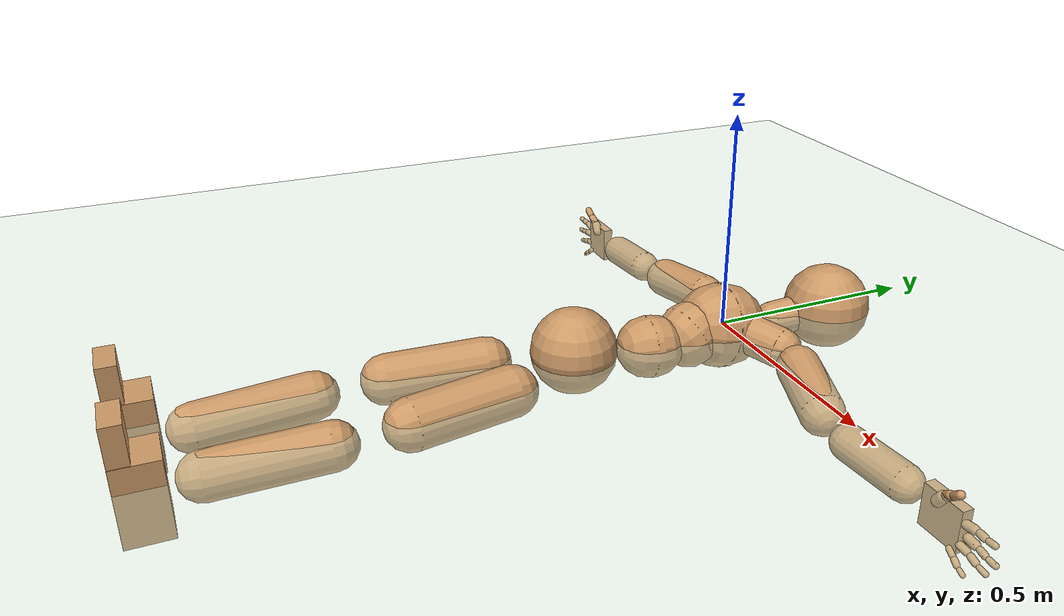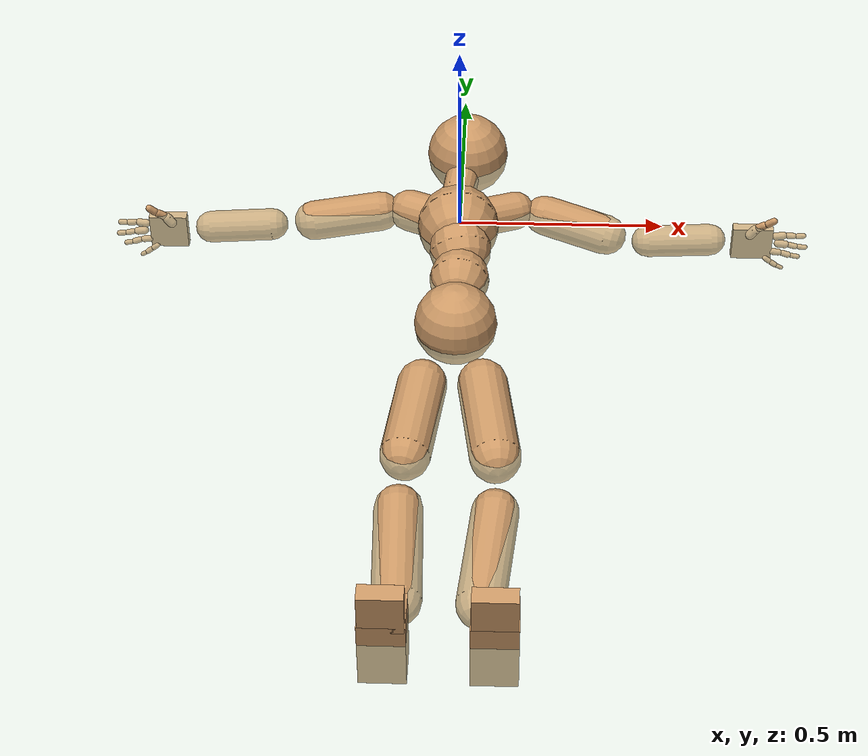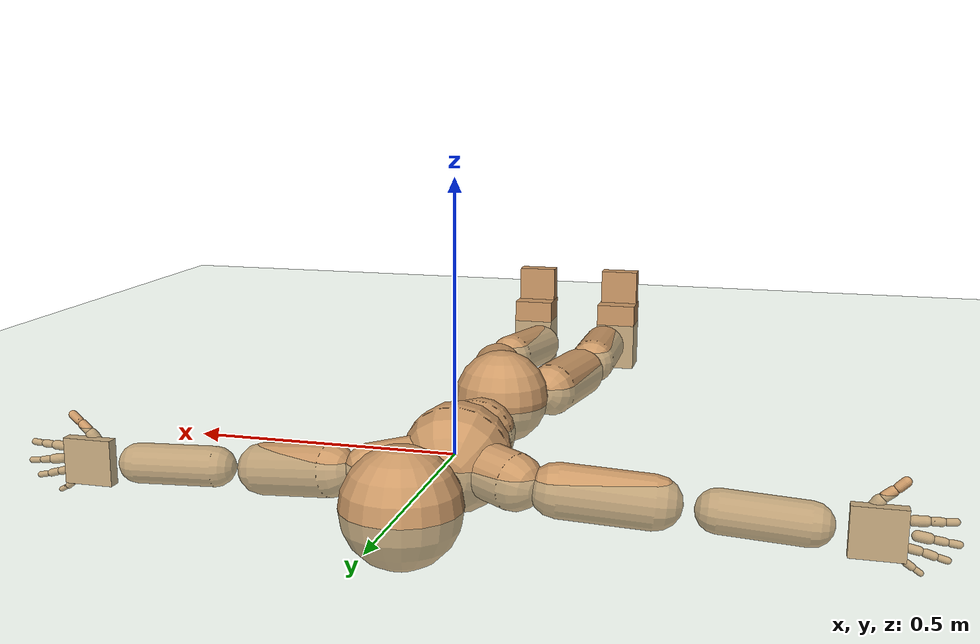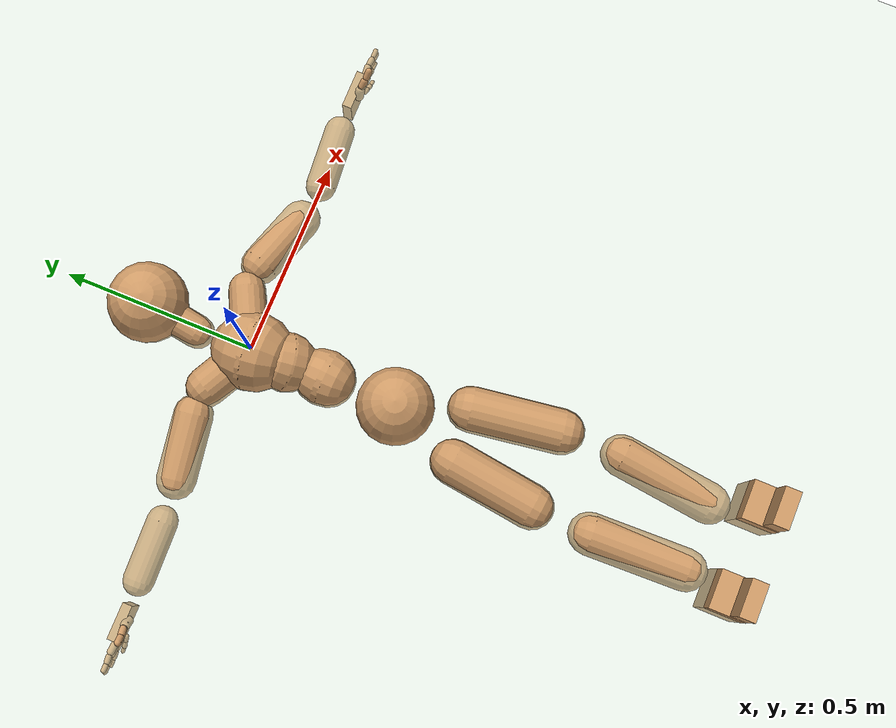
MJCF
<mujoco model="humanoid">
  <compiler coordinate="local"/>
  <default>
    <joint damping="0.0" armature="0.01" stiffness="0.0" limited="true"/>
    <geom conaffinity="1" condim="3" contype="7" margin="0.001" rgba="0.8 0.6 .4 1"/>
  </default>
  <asset>
    <texture type="skybox" builtin="gradient" rgb1=".4 .5 .6" rgb2="0 0 0" width="100" height="100"/>
    <texture builtin="flat" height="1278" mark="cross" markrgb="1 1 1" name="texgeom" random="0.01" rgb1="0.8 0.6 0.4" rgb2="0.8 0.6 0.4" type="cube" width="127"/>
    <texture builtin="checker" height="100" name="texplane" rgb1="0 0 0" rgb2="0.8 0.8 0.8" type="2d" width="100"/>
    <material name="MatPlane" reflectance="0.5" shininess="1" specular="1" texrepeat="60 60" texture="texplane"/>
    <material name="geom" texture="texgeom" texuniform="true"/>
  </asset>
  <worldbody>
    <light cutoff="100" diffuse="1 1 1" dir="-0 0 -1.3" directional="true" exponent="1" pos="0 0 1.3" specular=".1 .1 .1"/>
    <geom conaffinity="1" condim="3" name="floor" pos="0 0 0" rgba="0.8 0.9 0.8 1" size="100 100 .2" type="plane" material="MatPlane"/>
    <body name="Pelvis" pos="0.0028 -0.3869 0.0102">
      <freejoint name="Pelvis"/>
      <geom type="sphere" contype="1" conaffinity="1" density="4629.6296296296305" size="0.0979" pos="0.0000 0.0000 0.0000" name="Pelvis"/>
      <body name="L_Hip" pos="0.0564 -0.0969 -0.0272">
        <joint name="L_Hip_x" type="hinge" pos="0 0 0" axis="1 0 0" user="250 2.5 1 500 10 2" armature="0.01" range="-90.0000 90.0000" damping="0" stiffness="0"/>
        <joint name="L_Hip_y" type="hinge" pos="0 0 0" axis="0 1 0" user="250 2.5 1 500 10 2" armature="0.01" range="-90.0000 90.0000" damping="0" stiffness="0"/>
        <joint name="L_Hip_z" type="hinge" pos="0 0 0" axis="0 0 1" user="250 2.5 1 500 10 2" armature="0.01" range="-90.0000 90.0000" damping="0" stiffness="0"/>
        <geom type="capsule" contype="1" conaffinity="1" density="2040.816327" fromto="0.0114 -0.0768 -0.0019 0.0457 -0.3072 -0.0076" size="0.0581" name="L_Hip"/>
        <body name="L_Knee" pos="0.0572 -0.384 -0.0095">
          <joint name="L_Knee_x" type="hinge" pos="0 0 0" axis="1 0 0" user="250 2.5 1 500 10 2" armature="0.01" range="-180.0000 180.0000" damping="0" stiffness="0"/>
          <joint name="L_Knee_y" type="hinge" pos="0 0 0" axis="0 1 0" user="250 2.5 1 500 10 2" armature="0.01" range="-5.6250 5.6250" damping="0" stiffness="0"/>
          <joint name="L_Knee_z" type="hinge" pos="0 0 0" axis="0 0 1" user="250 2.5 1 500 10 2" armature="0.01" range="-5.6250 5.6250" damping="0" stiffness="0"/>
          <geom type="capsule" contype="1" conaffinity="1" density="1234.567901" fromto="-0.0086 -0.0816 -0.0066 -0.0343 -0.3265 -0.0263" size="0.0525" name="L_Knee"/>
          <body name="L_Ankle" pos="-0.0429 -0.4081 -0.0329">
            <joint name="L_Ankle_x" type="hinge" pos="0 0 0" axis="1 0 0" user="150 2.5 1 500 10 2" armature="0.01" range="-90.0000 90.0000" damping="0" stiffness="0"/>
            <joint name="L_Ankle_y" type="hinge" pos="0 0 0" axis="0 1 0" user="150 2.5 1 500 10 2" armature="0.01" range="-90.0000 90.0000" damping="0" stiffness="0"/>
            <joint name="L_Ankle_z" type="hinge" pos="0 0 0" axis="0 0 1" user="150 2.5 1 500 10 2" armature="0.01" range="-90.0000 90.0000" damping="0" stiffness="0"/>
            <geom type="box" density="447.903624" pos="0.0412 -0.0299 0.0247" size="0.0501 0.0473 0.0864" quat="1.0000 0.0000 0.0000 0.0000" name="L_Ankle"/>
            <body name="L_Toe" pos="0.0478 -0.0603 0.1206">
              <joint name="L_Toe_x" type="hinge" pos="0 0 0" axis="1 0 0" user="150 1 1 500 1 1" armature="0.01" range="-90.0000 90.0000" damping="0" stiffness="0"/>
              <joint name="L_Toe_y" type="hinge" pos="0 0 0" axis="0 1 0" user="150 1 1 500 1 1" armature="0.01" range="-45.0000 45.0000" damping="0" stiffness="0"/>
              <joint name="L_Toe_z" type="hinge" pos="0 0 0" axis="0 0 1" user="150 1 1 500 1 1" armature="0.01" range="-45.0000 45.0000" damping="0" stiffness="0"/>
              <geom type="box" density="423.788761" pos="-0.0066 0.0038 0.0262" size="0.048 0.0206 0.05" quat="1.0000 0.0000 0.0000 0.0000" name="L_Toe"/>
            </body>
          </body>
        </body>
      </body>
      <body name="R_Hip" pos="-0.0613 -0.1087 -0.0227">
        <joint name="R_Hip_x" type="hinge" pos="0 0 0" axis="1 0 0" user="250 2.5 1 500 10 2" armature="0.01" range="-90.0000 90.0000" damping="0" stiffness="0"/>
        <joint name="R_Hip_y" type="hinge" pos="0 0 0" axis="0 1 0" user="250 2.5 1 500 10 2" armature="0.01" range="-90.0000 90.0000" damping="0" stiffness="0"/>
        <joint name="R_Hip_z" type="hinge" pos="0 0 0" axis="0 0 1" user="250 2.5 1 500 10 2" armature="0.01" range="-90.0000 90.0000" damping="0" stiffness="0"/>
        <geom type="capsule" contype="1" conaffinity="1" density="2040.816327" fromto="-0.0093 -0.0733 -0.0033 -0.0372 -0.2933 -0.0132" size="0.0573" name="R_Hip"/>
        <body name="R_Knee" pos="-0.0465 -0.3666 -0.0166">
          <joint name="R_Knee_x" type="hinge" pos="0 0 0" axis="1 0 0" user="250 2.5 1 500 10 2" armature="0.01" range="-180.0000 180.0000" damping="0" stiffness="0"/>
          <joint name="R_Knee_y" type="hinge" pos="0 0 0" axis="0 1 0" user="250 2.5 1 500 10 2" armature="0.01" range="-5.6250 5.6250" damping="0" stiffness="0"/>
          <joint name="R_Knee_z" type="hinge" pos="0 0 0" axis="0 0 1" user="250 2.5 1 500 10 2" armature="0.01" range="-5.6250 5.6250" damping="0" stiffness="0"/>
          <geom type="capsule" contype="1" conaffinity="1" density="1234.567901" fromto="0.0030 -0.0833 -0.0042 0.0119 -0.3331 -0.0170" size="0.054" name="R_Knee"/>
          <body name="R_Ankle" pos="0.0149 -0.4163 -0.0212">
            <joint name="R_Ankle_x" type="hinge" pos="0 0 0" axis="1 0 0" user="150 1 1 500 10 2" armature="0.01" range="-90.0000 90.0000" damping="0" stiffness="0"/>
            <joint name="R_Ankle_y" type="hinge" pos="0 0 0" axis="0 1 0" user="150 1 1 500 10 2" armature="0.01" range="-90.0000 90.0000" damping="0" stiffness="0"/>
            <joint name="R_Ankle_z" type="hinge" pos="0 0 0" axis="0 0 1" user="150 1 1 500 10 2" armature="0.01" range="-90.0000 90.0000" damping="0" stiffness="0"/>
            <geom type="box" density="447.889972" pos="-0.0246 -0.0272 0.0156" size="0.0501 0.0473 0.0864" quat="1.0000 0.0000 0.0000 0.0000" name="R_Ankle"/>
            <body name="R_Toe" pos="-0.0392 -0.0605 0.1213">
              <joint name="R_Toe_x" type="hinge" pos="0 0 0" axis="1 0 0" user="150 1 1 500 1 1" armature="0.01" range="-90.0000 90.0000" damping="0" stiffness="0"/>
              <joint name="R_Toe_y" type="hinge" pos="0 0 0" axis="0 1 0" user="150 1 1 500 1 1" armature="0.01" range="-45.0000 45.0000" damping="0" stiffness="0"/>
              <joint name="R_Toe_z" type="hinge" pos="0 0 0" axis="0 0 1" user="150 1 1 500 1 1" armature="0.01" range="-45.0000 45.0000" damping="0" stiffness="0"/>
              <geom type="box" density="423.805625" pos="0.0146 0.0066 0.0163" size="0.048 0.0206 0.05" quat="1.0000 0.0000 0.0000 0.0000" name="R_Toe"/>
            </body>
          </body>
        </body>
      </body>
      <body name="Torso" pos="-0.0023 0.1156 -0.027">
        <joint name="Torso_x" type="hinge" pos="0 0 0" axis="1 0 0" user="500 5 1 500 10 2" armature="0.01" range="-60.0000 60.0000" damping="0" stiffness="0"/>
        <joint name="Torso_y" type="hinge" pos="0 0 0" axis="0 1 0" user="500 5 1 500 10 2" armature="0.01" range="-60.0000 60.0000" damping="0" stiffness="0"/>
        <joint name="Torso_z" type="hinge" pos="0 0 0" axis="0 0 1" user="500 5 1 500 10 2" armature="0.01" range="-60.0000 60.0000" damping="0" stiffness="0"/>
        <geom type="capsule" contype="1" conaffinity="1" density="2040.816327" fromto="0.0041 0.0676 -0.0020 0.0050 0.0826 -0.0024" size="0.072" name="Torso"/>
        <body name="Spine" pos="0.009 0.1502 -0.0044">
          <joint name="Spine_x" type="hinge" pos="0 0 0" axis="1 0 0" user="500 5 1 500 10 2" armature="0.01" range="-60.0000 60.0000" damping="0" stiffness="0"/>
          <joint name="Spine_y" type="hinge" pos="0 0 0" axis="0 1 0" user="500 5 1 500 10 2" armature="0.01" range="-60.0000 60.0000" damping="0" stiffness="0"/>
          <joint name="Spine_z" type="hinge" pos="0 0 0" axis="0 0 1" user="500 5 1 500 10 2" armature="0.01" range="-60.0000 60.0000" damping="0" stiffness="0"/>
          <geom type="capsule" contype="1" conaffinity="1" density="2040.816327" fromto="-0.0051 0.0253 0.0108 -0.0062 0.0309 0.0132" size="0.0756" name="Spine"/>
          <body name="Chest" pos="-0.0113 0.0562 0.024">
            <joint name="Chest_x" type="hinge" pos="0 0 0" axis="1 0 0" user="500 5 1 500 10 2" armature="0.01" range="-60.0000 60.0000" damping="0" stiffness="0"/>
            <joint name="Chest_y" type="hinge" pos="0 0 0" axis="0 1 0" user="500 5 1 500 10 2" armature="0.01" range="-60.0000 60.0000" damping="0" stiffness="0"/>
            <joint name="Chest_z" type="hinge" pos="0 0 0" axis="0 0 1" user="500 5 1 500 10 2" armature="0.01" range="-60.0000 60.0000" damping="0" stiffness="0"/>
            <geom type="capsule" contype="1" conaffinity="1" density="2040.816327" fromto="-0.0018 0.0528 -0.0074 -0.0023 0.0645 -0.0091" size="0.1003" name="Chest"/>
            <body name="Neck" pos="-0.0115 0.1744 -0.0294">
              <joint name="Neck_x" type="hinge" pos="0 0 0" axis="1 0 0" user="150 1 1 250 50 4" armature="0.01" range="-180.0000 180.0000" damping="0" stiffness="0"/>
              <joint name="Neck_y" type="hinge" pos="0 0 0" axis="0 1 0" user="150 1 1 250 50 4" armature="0.01" range="-180.0000 180.0000" damping="0" stiffness="0"/>
              <joint name="Neck_z" type="hinge" pos="0 0 0" axis="0 0 1" user="150 1 1 250 50 4" armature="0.01" range="-180.0000 180.0000" damping="0" stiffness="0"/>
              <geom type="capsule" contype="1" conaffinity="1" density="1000" fromto="0.0049 0.0354 0.0047 0.0196 0.1416 0.0189" size="0.0425" name="Neck"/>
              <body name="Head" pos="0.0245 0.177 0.0236">
                <joint name="Head_x" type="hinge" pos="0 0 0" axis="1 0 0" user="150 1 1 250 50 4" armature="0.01" range="-90.0000 90.0000" damping="0" stiffness="0"/>
                <joint name="Head_y" type="hinge" pos="0 0 0" axis="0 1 0" user="150 1 1 250 50 4" armature="0.01" range="-90.0000 90.0000" damping="0" stiffness="0"/>
                <joint name="Head_z" type="hinge" pos="0 0 0" axis="0 0 1" user="150 1 1 250 50 4" armature="0.01" range="-90.0000 90.0000" damping="0" stiffness="0"/>
                <geom type="sphere" contype="1" conaffinity="1" density="1000" size="0.1027" pos="0.0000 0.0000 0.0000" name="Head"/>
              </body>
            </body>
            <body name="L_Thorax" pos="0.0453 0.089 -0.0071">
              <joint name="L_Thorax_x" type="hinge" pos="0 0 0" axis="1 0 0" user="200 2 1 500 50 4" armature="0.01" range="-180.0000 180.0000" damping="0" stiffness="0"/>
              <joint name="L_Thorax_y" type="hinge" pos="0 0 0" axis="0 1 0" user="200 2 1 500 50 4" armature="0.01" range="-180.0000 180.0000" damping="0" stiffness="0"/>
              <joint name="L_Thorax_z" type="hinge" pos="0 0 0" axis="0 0 1" user="200 2 1 500 50 4" armature="0.01" range="-180.0000 180.0000" damping="0" stiffness="0"/>
              <geom type="capsule" contype="1" conaffinity="1" density="1000" fromto="0.0232 0.0120 -0.0030 0.0927 0.0481 -0.0121" size="0.0474" name="L_Thorax"/>
              <body name="L_Shoulder" pos="0.1159 0.0601 -0.0152">
                <joint name="L_Shoulder_x" type="hinge" pos="0 0 0" axis="1 0 0" user="200 2 1 500 50 4" armature="0.01" range="-180.0000 180.0000" damping="0" stiffness="0"/>
                <joint name="L_Shoulder_y" type="hinge" pos="0 0 0" axis="0 1 0" user="200 2 1 500 50 4" armature="0.01" range="-180.0000 180.0000" damping="0" stiffness="0"/>
                <joint name="L_Shoulder_z" type="hinge" pos="0 0 0" axis="0 0 1" user="200 2 1 500 50 4" armature="0.01" range="-180.0000 180.0000" damping="0" stiffness="0"/>
                <geom type="capsule" contype="1" conaffinity="1" density="1000" fromto="0.0515 -0.0148 -0.0077 0.2058 -0.0594 -0.0309" size="0.0495" name="L_Shoulder"/>
                <body name="L_Elbow" pos="0.2573 -0.0742 -0.0387">
                  <joint name="L_Elbow_x" type="hinge" pos="0 0 0" axis="1 0 0" user="150 1 1 150 10 2" armature="0.01" range="-720.0000 720.0000" damping="0" stiffness="0"/>
                  <joint name="L_Elbow_y" type="hinge" pos="0 0 0" axis="0 1 0" user="150 1 1 150 10 2" armature="0.01" range="-720.0000 720.0000" damping="0" stiffness="0"/>
                  <joint name="L_Elbow_z" type="hinge" pos="0 0 0" axis="0 0 1" user="150 1 1 150 10 2" armature="0.01" range="-720.0000 720.0000" damping="0" stiffness="0"/>
                  <geom type="capsule" contype="1" conaffinity="1" density="1000" fromto="0.0520 0.0043 -0.0006 0.2079 0.0171 -0.0024" size="0.0392" name="L_Elbow"/>
                  <body name="L_Wrist" pos="0.2598 0.0213 -0.003">
                    <joint name="L_Wrist_x" type="hinge" pos="0 0 0" axis="1 0 0" user="100 1 1 150 1 1" armature="0.01" range="-180.0000 180.0000" damping="0" stiffness="0"/>
                    <joint name="L_Wrist_y" type="hinge" pos="0 0 0" axis="0 1 0" user="100 1 1 150 1 1" armature="0.01" range="-180.0000 180.0000" damping="0" stiffness="0"/>
                    <joint name="L_Wrist_z" type="hinge" pos="0 0 0" axis="0 0 1" user="100 1 1 150 1 1" armature="0.01" range="-180.0000 180.0000" damping="0" stiffness="0"/>
                    <geom type="box" density="1203.39109" pos="0.0540 -0.0017 -0.0033" size="0.0499 0.0123 0.0458" quat="1.0000 0.0000 0.0000 0.0000" name="L_Wrist"/>
                    <body name="L_Index1" pos="0.1051 -0.0091 0.0191">
                      <joint name="L_Index1_x" type="hinge" pos="0 0 0" axis="1 0 0" user="100 10 1 150" armature="0.01" range="-180.0000 180.0000" damping="0" stiffness="0"/>
                      <joint name="L_Index1_y" type="hinge" pos="0 0 0" axis="0 1 0" user="100 10 1 150" armature="0.01" range="-180.0000 180.0000" damping="0" stiffness="0"/>
                      <joint name="L_Index1_z" type="hinge" pos="0 0 0" axis="0 0 1" user="100 10 1 150" armature="0.01" range="-180.0000 180.0000" damping="0" stiffness="0"/>
                      <geom type="capsule" contype="1" conaffinity="1" density="1000" fromto="0.0065 0.0004 0.0006 0.0258 0.0018 0.0022" size="0.0092" name="L_Index1"/>
                      <body name="L_Index2" pos="0.0323 0.0022 0.0028">
                        <joint name="L_Index2_x" type="hinge" pos="0 0 0" axis="1 0 0" user="100 10 1 150" armature="0.01" range="-180.0000 180.0000" damping="0" stiffness="0"/>
                        <joint name="L_Index2_y" type="hinge" pos="0 0 0" axis="0 1 0" user="100 10 1 150" armature="0.01" range="-180.0000 180.0000" damping="0" stiffness="0"/>
                        <joint name="L_Index2_z" type="hinge" pos="0 0 0" axis="0 0 1" user="100 10 1 150" armature="0.01" range="-180.0000 180.0000" damping="0" stiffness="0"/>
                        <geom type="capsule" contype="1" conaffinity="1" density="1000" fromto="0.0046 -0.0005 -0.0000 0.0182 -0.0020 -0.0001" size="0.0076" name="L_Index2"/>
                        <body name="L_Index3" pos="0.0228 -0.0024 -0.0001">
                          <joint name="L_Index3_x" type="hinge" pos="0 0 0" axis="1 0 0" user="100 10 1 150" armature="0.01" range="-180.0000 180.0000" damping="0" stiffness="0"/>
                          <joint name="L_Index3_y" type="hinge" pos="0 0 0" axis="0 1 0" user="100 10 1 150" armature="0.01" range="-180.0000 180.0000" damping="0" stiffness="0"/>
                          <joint name="L_Index3_z" type="hinge" pos="0 0 0" axis="0 0 1" user="100 10 1 150" armature="0.01" range="-180.0000 180.0000" damping="0" stiffness="0"/>
                          <geom type="capsule" contype="1" conaffinity="1" density="1000" fromto="0.0050 -0.0001 0.0004 0.0198 -0.0004 0.0015" size="0.0064" name="L_Index3"/>
                        </body>
                      </body>
                    </body>
                    <body name="L_Middle1" pos="0.1128 -0.0068 -0.0043">
                      <joint name="L_Middle1_x" type="hinge" pos="0 0 0" axis="1 0 0" user="100 10 1 150" armature="0.01" range="-180.0000 180.0000" damping="0" stiffness="0"/>
                      <joint name="L_Middle1_y" type="hinge" pos="0 0 0" axis="0 1 0" user="100 10 1 150" armature="0.01" range="-180.0000 180.0000" damping="0" stiffness="0"/>
                      <joint name="L_Middle1_z" type="hinge" pos="0 0 0" axis="0 0 1" user="100 10 1 150" armature="0.01" range="-180.0000 180.0000" damping="0" stiffness="0"/>
                      <geom type="capsule" contype="1" conaffinity="1" density="1000" fromto="0.0062 0.0002 -0.0008 0.0247 0.0006 -0.0033" size="0.0094" name="L_Middle1"/>
                      <body name="L_Middle2" pos="0.0308 0.0008 -0.0041">
                        <joint name="L_Middle2_x" type="hinge" pos="0 0 0" axis="1 0 0" user="100 10 1 150" armature="0.01" range="-180.0000 180.0000" damping="0" stiffness="0"/>
                        <joint name="L_Middle2_y" type="hinge" pos="0 0 0" axis="0 1 0" user="100 10 1 150" armature="0.01" range="-180.0000 180.0000" damping="0" stiffness="0"/>
                        <joint name="L_Middle2_z" type="hinge" pos="0 0 0" axis="0 0 1" user="100 10 1 150" armature="0.01" range="-180.0000 180.0000" damping="0" stiffness="0"/>
                        <geom type="capsule" contype="1" conaffinity="1" density="1000" fromto="0.0047 -0.0004 -0.0008 0.0190 -0.0016 -0.0034" size="0.007" name="L_Middle2"/>
                        <body name="L_Middle3" pos="0.0237 -0.002 -0.0042">
                          <joint name="L_Middle3_x" type="hinge" pos="0 0 0" axis="1 0 0" user="100 10 1 150" armature="0.01" range="-180.0000 180.0000" damping="0" stiffness="0"/>
                          <joint name="L_Middle3_y" type="hinge" pos="0 0 0" axis="0 1 0" user="100 10 1 150" armature="0.01" range="-180.0000 180.0000" damping="0" stiffness="0"/>
                          <joint name="L_Middle3_z" type="hinge" pos="0 0 0" axis="0 0 1" user="100 10 1 150" armature="0.01" range="-180.0000 180.0000" damping="0" stiffness="0"/>
                          <geom type="capsule" contype="1" conaffinity="1" density="1000" fromto="0.0051 -0.0000 -0.0004 0.0206 -0.0000 -0.0018" size="0.0062" name="L_Middle3"/>
                        </body>
                      </body>
                    </body>
                    <body name="L_Pinky1" pos="0.0873 -0.0151 -0.0437">
                      <joint name="L_Pinky1_x" type="hinge" pos="0 0 0" axis="1 0 0" user="100 10 1 150" armature="0.01" range="-180.0000 180.0000" damping="0" stiffness="0"/>
                      <joint name="L_Pinky1_y" type="hinge" pos="0 0 0" axis="0 1 0" user="100 10 1 150" armature="0.01" range="-180.0000 180.0000" damping="0" stiffness="0"/>
                      <joint name="L_Pinky1_z" type="hinge" pos="0 0 0" axis="0 0 1" user="100 10 1 150" armature="0.01" range="-180.0000 180.0000" damping="0" stiffness="0"/>
                      <geom type="capsule" contype="1" conaffinity="1" density="1000" fromto="0.0032 -0.0002 -0.0024 0.0127 -0.0009 -0.0094" size="0.0067" name="L_Pinky1"/>
                      <body name="L_Pinky2" pos="0.0158 -0.0011 -0.0118">
                        <joint name="L_Pinky2_x" type="hinge" pos="0 0 0" axis="1 0 0" user="100 10 1 150" armature="0.01" range="-180.0000 180.0000" damping="0" stiffness="0"/>
                        <joint name="L_Pinky2_y" type="hinge" pos="0 0 0" axis="0 1 0" user="100 10 1 150" armature="0.01" range="-180.0000 180.0000" damping="0" stiffness="0"/>
                        <joint name="L_Pinky2_z" type="hinge" pos="0 0 0" axis="0 0 1" user="100 10 1 150" armature="0.01" range="-180.0000 180.0000" damping="0" stiffness="0"/>
                        <geom type="capsule" contype="1" conaffinity="1" density="1000" fromto="0.0031 -0.0003 -0.0022 0.0126 -0.0014 -0.0089" size="0.0065" name="L_Pinky2"/>
                        <body name="L_Pinky3" pos="0.0157 -0.0017 -0.0111">
                          <joint name="L_Pinky3_x" type="hinge" pos="0 0 0" axis="1 0 0" user="100 10 1 150" armature="0.01" range="-180.0000 180.0000" damping="0" stiffness="0"/>
                          <joint name="L_Pinky3_y" type="hinge" pos="0 0 0" axis="0 1 0" user="100 10 1 150" armature="0.01" range="-180.0000 180.0000" damping="0" stiffness="0"/>
                          <joint name="L_Pinky3_z" type="hinge" pos="0 0 0" axis="0 0 1" user="100 10 1 150" armature="0.01" range="-180.0000 180.0000" damping="0" stiffness="0"/>
                          <geom type="capsule" contype="1" conaffinity="1" density="1000" fromto="0.0035 0.0001 -0.0018 0.0142 0.0002 -0.0073" size="0.005" name="L_Pinky3"/>
                        </body>
                      </body>
                    </body>
                    <body name="L_Ring1" pos="0.1008 -0.0097 -0.0275">
                      <joint name="L_Ring1_x" type="hinge" pos="0 0 0" axis="1 0 0" user="100 10 1 150" armature="0.01" range="-180.0000 180.0000" damping="0" stiffness="0"/>
                      <joint name="L_Ring1_y" type="hinge" pos="0 0 0" axis="0 1 0" user="100 10 1 150" armature="0.01" range="-180.0000 180.0000" damping="0" stiffness="0"/>
                      <joint name="L_Ring1_z" type="hinge" pos="0 0 0" axis="0 0 1" user="100 10 1 150" armature="0.01" range="-180.0000 180.0000" damping="0" stiffness="0"/>
                      <geom type="capsule" contype="1" conaffinity="1" density="1000" fromto="0.0057 0.0003 -0.0011 0.0227 0.0013 -0.0042" size="0.008" name="L_Ring1"/>
                      <body name="L_Ring2" pos="0.0284 0.0016 -0.0053">
                        <joint name="L_Ring2_x" type="hinge" pos="0 0 0" axis="1 0 0" user="100 10 1 150" armature="0.01" range="-180.0000 180.0000" damping="0" stiffness="0"/>
                        <joint name="L_Ring2_y" type="hinge" pos="0 0 0" axis="0 1 0" user="100 10 1 150" armature="0.01" range="-180.0000 180.0000" damping="0" stiffness="0"/>
                        <joint name="L_Ring2_z" type="hinge" pos="0 0 0" axis="0 0 1" user="100 10 1 150" armature="0.01" range="-180.0000 180.0000" damping="0" stiffness="0"/>
                        <geom type="capsule" contype="1" conaffinity="1" density="1000" fromto="0.0046 -0.0003 -0.0014 0.0184 -0.0011 -0.0057" size="0.0074" name="L_Ring2"/>
                        <body name="L_Ring3" pos="0.023 -0.0014 -0.0071">
                          <joint name="L_Ring3_x" type="hinge" pos="0 0 0" axis="1 0 0" user="100 10 1 150" armature="0.01" range="-180.0000 180.0000" damping="0" stiffness="0"/>
                          <joint name="L_Ring3_y" type="hinge" pos="0 0 0" axis="0 1 0" user="100 10 1 150" armature="0.01" range="-180.0000 180.0000" damping="0" stiffness="0"/>
                          <joint name="L_Ring3_z" type="hinge" pos="0 0 0" axis="0 0 1" user="100 10 1 150" armature="0.01" range="-180.0000 180.0000" damping="0" stiffness="0"/>
                          <geom type="capsule" contype="1" conaffinity="1" density="1000" fromto="0.0050 0.0001 -0.0010 0.0200 0.0005 -0.0041" size="0.0058" name="L_Ring3"/>
                        </body>
                      </body>
                    </body>
                    <body name="L_Thumb1" pos="0.0427 -0.0186 0.0255">
                      <joint name="L_Thumb1_x" type="hinge" pos="0 0 0" axis="1 0 0" user="100 10 1 150" armature="0.01" range="-180.0000 180.0000" damping="0" stiffness="0"/>
                      <joint name="L_Thumb1_y" type="hinge" pos="0 0 0" axis="0 1 0" user="100 10 1 150" armature="0.01" range="-180.0000 180.0000" damping="0" stiffness="0"/>
                      <joint name="L_Thumb1_z" type="hinge" pos="0 0 0" axis="0 0 1" user="100 10 1 150" armature="0.01" range="-180.0000 180.0000" damping="0" stiffness="0"/>
                      <geom type="capsule" contype="1" conaffinity="1" density="1000" fromto="0.0036 0.0002 0.0050 0.0142 0.0007 0.0200" size="0.0121" name="L_Thumb1"/>
                      <body name="L_Thumb2" pos="0.0178 0.0009 0.0251">
                        <joint name="L_Thumb2_x" type="hinge" pos="0 0 0" axis="1 0 0" user="100 10 1 150" armature="0.01" range="-180.0000 180.0000" damping="0" stiffness="0"/>
                        <joint name="L_Thumb2_y" type="hinge" pos="0 0 0" axis="0 1 0" user="100 10 1 150" armature="0.01" range="-180.0000 180.0000" damping="0" stiffness="0"/>
                        <joint name="L_Thumb2_z" type="hinge" pos="0 0 0" axis="0 0 1" user="100 10 1 150" armature="0.01" range="-180.0000 180.0000" damping="0" stiffness="0"/>
                        <geom type="capsule" contype="1" conaffinity="1" density="1000" fromto="0.0043 -0.0010 0.0031 0.0171 -0.0039 0.0124" size="0.0096" name="L_Thumb2"/>
                        <body name="L_Thumb3" pos="0.0214 -0.0049 0.0155">
                          <joint name="L_Thumb3_x" type="hinge" pos="0 0 0" axis="1 0 0" user="100 10 1 150" armature="0.01" range="-180.0000 180.0000" damping="0" stiffness="0"/>
                          <joint name="L_Thumb3_y" type="hinge" pos="0 0 0" axis="0 1 0" user="100 10 1 150" armature="0.01" range="-180.0000 180.0000" damping="0" stiffness="0"/>
                          <joint name="L_Thumb3_z" type="hinge" pos="0 0 0" axis="0 0 1" user="100 10 1 150" armature="0.01" range="-180.0000 180.0000" damping="0" stiffness="0"/>
                          <geom type="capsule" contype="1" conaffinity="1" density="1000" fromto="0.0047 -0.0006 0.0035 0.0187 -0.0023 0.0140" size="0.0087" name="L_Thumb3"/>
                        </body>
                      </body>
                    </body>
                  </body>
                </body>
              </body>
            </body>
            <body name="R_Thorax" pos="-0.0461 0.0884 -0.0129">
              <joint name="R_Thorax_x" type="hinge" pos="0 0 0" axis="1 0 0" user="200 2 1 150 10 2" armature="0.01" range="-180.0000 180.0000" damping="0" stiffness="0"/>
              <joint name="R_Thorax_y" type="hinge" pos="0 0 0" axis="0 1 0" user="200 2 1 150 10 2" armature="0.01" range="-180.0000 180.0000" damping="0" stiffness="0"/>
              <joint name="R_Thorax_z" type="hinge" pos="0 0 0" axis="0 0 1" user="200 2 1 150 10 2" armature="0.01" range="-180.0000 180.0000" damping="0" stiffness="0"/>
              <geom type="capsule" contype="1" conaffinity="1" density="1000" fromto="-0.0200 0.0111 -0.0022 -0.0799 0.0445 -0.0089" size="0.0521" name="R_Thorax"/>
              <body name="R_Shoulder" pos="-0.0999 0.0556 -0.0111">
                <joint name="R_Shoulder_x" type="hinge" pos="0 0 0" axis="1 0 0" user="200 2 1 250 10 2" armature="0.01" range="-180.0000 180.0000" damping="0" stiffness="0"/>
                <joint name="R_Shoulder_y" type="hinge" pos="0 0 0" axis="0 1 0" user="200 2 1 250 10 2" armature="0.01" range="-180.0000 180.0000" damping="0" stiffness="0"/>
                <joint name="R_Shoulder_z" type="hinge" pos="0 0 0" axis="0 0 1" user="200 2 1 250 10 2" armature="0.01" range="-180.0000 180.0000" damping="0" stiffness="0"/>
                <geom type="capsule" contype="1" conaffinity="1" density="1000" fromto="-0.0548 -0.0079 -0.0049 -0.2194 -0.0315 -0.0197" size="0.0495" name="R_Shoulder"/>
                <body name="R_Elbow" pos="-0.2742 -0.0394 -0.0246">
                  <joint name="R_Elbow_x" type="hinge" pos="0 0 0" axis="1 0 0" user="150 1 1 150 10 2" armature="0.01" range="-720.0000 720.0000" damping="0" stiffness="0"/>
                  <joint name="R_Elbow_y" type="hinge" pos="0 0 0" axis="0 1 0" user="150 1 1 150 10 2" armature="0.01" range="-720.0000 720.0000" damping="0" stiffness="0"/>
                  <joint name="R_Elbow_z" type="hinge" pos="0 0 0" axis="0 0 1" user="150 1 1 150 10 2" armature="0.01" range="-720.0000 720.0000" damping="0" stiffness="0"/>
                  <geom type="capsule" contype="1" conaffinity="1" density="1000" fromto="-0.0513 -0.0010 -0.0032 -0.2053 -0.0041 -0.0127" size="0.0395" name="R_Elbow"/>
                  <body name="R_Wrist" pos="-0.2566 -0.0051 -0.0158">
                    <joint name="R_Wrist_x" type="hinge" pos="0 0 0" axis="1 0 0" user="100 1 1 150 1 1" armature="0.01" range="-180.0000 180.0000" damping="0" stiffness="0"/>
                    <joint name="R_Wrist_y" type="hinge" pos="0 0 0" axis="0 1 0" user="100 1 1 150 1 1" armature="0.01" range="-180.0000 180.0000" damping="0" stiffness="0"/>
                    <joint name="R_Wrist_z" type="hinge" pos="0 0 0" axis="0 0 1" user="100 1 1 150 1 1" armature="0.01" range="-180.0000 180.0000" damping="0" stiffness="0"/>
                    <geom type="box" density="1232.261038" pos="-0.0553 -0.0049 -0.0027" size="0.0469 0.0123 0.0458" quat="1.0000 0.0000 0.0000 0.0000" name="R_Wrist"/>
                    <body name="R_Index1" pos="-0.1031 -0.0123 0.0196">
                      <joint name="R_Index1_x" type="hinge" pos="0 0 0" axis="1 0 0" user="100 10 1 150" armature="0.01" range="-180.0000 180.0000" damping="0" stiffness="0"/>
                      <joint name="R_Index1_y" type="hinge" pos="0 0 0" axis="0 1 0" user="100 10 1 150" armature="0.01" range="-180.0000 180.0000" damping="0" stiffness="0"/>
                      <joint name="R_Index1_z" type="hinge" pos="0 0 0" axis="0 0 1" user="100 10 1 150" armature="0.01" range="-180.0000 180.0000" damping="0" stiffness="0"/>
                      <geom type="capsule" contype="1" conaffinity="1" density="1000" fromto="-0.0065 0.0004 0.0006 -0.0258 0.0018 0.0022" size="0.0092" name="R_Index1"/>
                      <body name="R_Index2" pos="-0.0323 0.0022 0.0028">
                        <joint name="R_Index2_x" type="hinge" pos="0 0 0" axis="1 0 0" user="100 10 1 150" armature="0.01" range="-180.0000 180.0000" damping="0" stiffness="0"/>
                        <joint name="R_Index2_y" type="hinge" pos="0 0 0" axis="0 1 0" user="100 10 1 150" armature="0.01" range="-180.0000 180.0000" damping="0" stiffness="0"/>
                        <joint name="R_Index2_z" type="hinge" pos="0 0 0" axis="0 0 1" user="100 10 1 150" armature="0.01" range="-180.0000 180.0000" damping="0" stiffness="0"/>
                        <geom type="capsule" contype="1" conaffinity="1" density="1000" fromto="-0.0046 -0.0005 -0.0000 -0.0182 -0.0020 -0.0001" size="0.0076" name="R_Index2"/>
                        <body name="R_Index3" pos="-0.0228 -0.0024 -0.0001">
                          <joint name="R_Index3_x" type="hinge" pos="0 0 0" axis="1 0 0" user="100 10 1 150" armature="0.01" range="-180.0000 180.0000" damping="0" stiffness="0"/>
                          <joint name="R_Index3_y" type="hinge" pos="0 0 0" axis="0 1 0" user="100 10 1 150" armature="0.01" range="-180.0000 180.0000" damping="0" stiffness="0"/>
                          <joint name="R_Index3_z" type="hinge" pos="0 0 0" axis="0 0 1" user="100 10 1 150" armature="0.01" range="-180.0000 180.0000" damping="0" stiffness="0"/>
                          <geom type="capsule" contype="1" conaffinity="1" density="1000" fromto="-0.0042 -0.0001 0.0004 -0.0166 -0.0004 0.0015" size="0.0067" name="R_Index3"/>
                        </body>
                      </body>
                    </body>
                    <body name="R_Middle1" pos="-0.1107 -0.01 -0.0038">
                      <joint name="R_Middle1_x" type="hinge" pos="0 0 0" axis="1 0 0" user="100 10 1 150" armature="0.01" range="-180.0000 180.0000" damping="0" stiffness="0"/>
                      <joint name="R_Middle1_y" type="hinge" pos="0 0 0" axis="0 1 0" user="100 10 1 150" armature="0.01" range="-180.0000 180.0000" damping="0" stiffness="0"/>
                      <joint name="R_Middle1_z" type="hinge" pos="0 0 0" axis="0 0 1" user="100 10 1 150" armature="0.01" range="-180.0000 180.0000" damping="0" stiffness="0"/>
                      <geom type="capsule" contype="1" conaffinity="1" density="1000" fromto="-0.0062 0.0002 -0.0008 -0.0247 0.0006 -0.0033" size="0.0094" name="R_Middle1"/>
                      <body name="R_Middle2" pos="-0.0308 0.0008 -0.0041">
                        <joint name="R_Middle2_x" type="hinge" pos="0 0 0" axis="1 0 0" user="100 10 1 150" armature="0.01" range="-180.0000 180.0000" damping="0" stiffness="0"/>
                        <joint name="R_Middle2_y" type="hinge" pos="0 0 0" axis="0 1 0" user="100 10 1 150" armature="0.01" range="-180.0000 180.0000" damping="0" stiffness="0"/>
                        <joint name="R_Middle2_z" type="hinge" pos="0 0 0" axis="0 0 1" user="100 10 1 150" armature="0.01" range="-180.0000 180.0000" damping="0" stiffness="0"/>
                        <geom type="capsule" contype="1" conaffinity="1" density="1000" fromto="-0.0047 -0.0004 -0.0008 -0.0190 -0.0016 -0.0034" size="0.007" name="R_Middle2"/>
                        <body name="R_Middle3" pos="-0.0237 -0.002 -0.0042">
                          <joint name="R_Middle3_x" type="hinge" pos="0 0 0" axis="1 0 0" user="100 10 1 150" armature="0.01" range="-180.0000 180.0000" damping="0" stiffness="0"/>
                          <joint name="R_Middle3_y" type="hinge" pos="0 0 0" axis="0 1 0" user="100 10 1 150" armature="0.01" range="-180.0000 180.0000" damping="0" stiffness="0"/>
                          <joint name="R_Middle3_z" type="hinge" pos="0 0 0" axis="0 0 1" user="100 10 1 150" armature="0.01" range="-180.0000 180.0000" damping="0" stiffness="0"/>
                          <geom type="capsule" contype="1" conaffinity="1" density="1000" fromto="-0.0043 -0.0000 -0.0004 -0.0174 -0.0000 -0.0018" size="0.0064" name="R_Middle3"/>
                        </body>
                      </body>
                    </body>
                    <body name="R_Pinky1" pos="-0.0853 -0.0183 -0.0432">
                      <joint name="R_Pinky1_x" type="hinge" pos="0 0 0" axis="1 0 0" user="100 10 1 150" armature="0.01" range="-180.0000 180.0000" damping="0" stiffness="0"/>
                      <joint name="R_Pinky1_y" type="hinge" pos="0 0 0" axis="0 1 0" user="100 10 1 150" armature="0.01" range="-180.0000 180.0000" damping="0" stiffness="0"/>
                      <joint name="R_Pinky1_z" type="hinge" pos="0 0 0" axis="0 0 1" user="100 10 1 150" armature="0.01" range="-180.0000 180.0000" damping="0" stiffness="0"/>
                      <geom type="capsule" contype="1" conaffinity="1" density="1000" fromto="-0.0032 -0.0002 -0.0024 -0.0127 -0.0009 -0.0094" size="0.0067" name="R_Pinky1"/>
                      <body name="R_Pinky2" pos="-0.0158 -0.0011 -0.0118">
                        <joint name="R_Pinky2_x" type="hinge" pos="0 0 0" axis="1 0 0" user="100 10 1 150" armature="0.01" range="-180.0000 180.0000" damping="0" stiffness="0"/>
                        <joint name="R_Pinky2_y" type="hinge" pos="0 0 0" axis="0 1 0" user="100 10 1 150" armature="0.01" range="-180.0000 180.0000" damping="0" stiffness="0"/>
                        <joint name="R_Pinky2_z" type="hinge" pos="0 0 0" axis="0 0 1" user="100 10 1 150" armature="0.01" range="-180.0000 180.0000" damping="0" stiffness="0"/>
                        <geom type="capsule" contype="1" conaffinity="1" density="1000" fromto="-0.0031 -0.0003 -0.0022 -0.0126 -0.0014 -0.0089" size="0.0065" name="R_Pinky2"/>
                        <body name="R_Pinky3" pos="-0.0157 -0.0017 -0.0111">
                          <joint name="R_Pinky3_x" type="hinge" pos="0 0 0" axis="1 0 0" user="100 10 1 150" armature="0.01" range="-180.0000 180.0000" damping="0" stiffness="0"/>
                          <joint name="R_Pinky3_y" type="hinge" pos="0 0 0" axis="0 1 0" user="100 10 1 150" armature="0.01" range="-180.0000 180.0000" damping="0" stiffness="0"/>
                          <joint name="R_Pinky3_z" type="hinge" pos="0 0 0" axis="0 0 1" user="100 10 1 150" armature="0.01" range="-180.0000 180.0000" damping="0" stiffness="0"/>
                          <geom type="capsule" contype="1" conaffinity="1" density="1000" fromto="-0.0027 0.0001 -0.0018 -0.0110 0.0002 -0.0073" size="0.0052" name="R_Pinky3"/>
                        </body>
                      </body>
                    </body>
                    <body name="R_Ring1" pos="-0.0987 -0.0129 -0.0269">
                      <joint name="R_Ring1_x" type="hinge" pos="0 0 0" axis="1 0 0" user="100 10 1 150" armature="0.01" range="-180.0000 180.0000" damping="0" stiffness="0"/>
                      <joint name="R_Ring1_y" type="hinge" pos="0 0 0" axis="0 1 0" user="100 10 1 150" armature="0.01" range="-180.0000 180.0000" damping="0" stiffness="0"/>
                      <joint name="R_Ring1_z" type="hinge" pos="0 0 0" axis="0 0 1" user="100 10 1 150" armature="0.01" range="-180.0000 180.0000" damping="0" stiffness="0"/>
                      <geom type="capsule" contype="1" conaffinity="1" density="1000" fromto="-0.0057 0.0003 -0.0011 -0.0227 0.0013 -0.0042" size="0.008" name="R_Ring1"/>
                      <body name="R_Ring2" pos="-0.0284 0.0016 -0.0053">
                        <joint name="R_Ring2_x" type="hinge" pos="0 0 0" axis="1 0 0" user="100 10 1 150" armature="0.01" range="-180.0000 180.0000" damping="0" stiffness="0"/>
                        <joint name="R_Ring2_y" type="hinge" pos="0 0 0" axis="0 1 0" user="100 10 1 150" armature="0.01" range="-180.0000 180.0000" damping="0" stiffness="0"/>
                        <joint name="R_Ring2_z" type="hinge" pos="0 0 0" axis="0 0 1" user="100 10 1 150" armature="0.01" range="-180.0000 180.0000" damping="0" stiffness="0"/>
                        <geom type="capsule" contype="1" conaffinity="1" density="1000" fromto="-0.0046 -0.0003 -0.0014 -0.0184 -0.0011 -0.0057" size="0.0074" name="R_Ring2"/>
                        <body name="R_Ring3" pos="-0.023 -0.0014 -0.0071">
                          <joint name="R_Ring3_x" type="hinge" pos="0 0 0" axis="1 0 0" user="100 10 1 150" armature="0.01" range="-180.0000 180.0000" damping="0" stiffness="0"/>
                          <joint name="R_Ring3_y" type="hinge" pos="0 0 0" axis="0 1 0" user="100 10 1 150" armature="0.01" range="-180.0000 180.0000" damping="0" stiffness="0"/>
                          <joint name="R_Ring3_z" type="hinge" pos="0 0 0" axis="0 0 1" user="100 10 1 150" armature="0.01" range="-180.0000 180.0000" damping="0" stiffness="0"/>
                          <geom type="capsule" contype="1" conaffinity="1" density="1000" fromto="-0.0042 0.0001 -0.0010 -0.0168 0.0005 -0.0041" size="0.0061" name="R_Ring3"/>
                        </body>
                      </body>
                    </body>
                    <body name="R_Thumb1" pos="-0.0407 -0.0218 0.026">
                      <joint name="R_Thumb1_x" type="hinge" pos="0 0 0" axis="1 0 0" user="100 10 1 150" armature="0.01" range="-180.0000 180.0000" damping="0" stiffness="0"/>
                      <joint name="R_Thumb1_y" type="hinge" pos="0 0 0" axis="0 1 0" user="100 10 1 150" armature="0.01" range="-180.0000 180.0000" damping="0" stiffness="0"/>
                      <joint name="R_Thumb1_z" type="hinge" pos="0 0 0" axis="0 0 1" user="100 10 1 150" armature="0.01" range="-180.0000 180.0000" damping="0" stiffness="0"/>
                      <geom type="capsule" contype="1" conaffinity="1" density="1000" fromto="-0.0036 0.0002 0.0050 -0.0142 0.0007 0.0200" size="0.0121" name="R_Thumb1"/>
                      <body name="R_Thumb2" pos="-0.0178 0.0009 0.0251">
                        <joint name="R_Thumb2_x" type="hinge" pos="0 0 0" axis="1 0 0" user="100 10 1 150" armature="0.01" range="-180.0000 180.0000" damping="0" stiffness="0"/>
                        <joint name="R_Thumb2_y" type="hinge" pos="0 0 0" axis="0 1 0" user="100 10 1 150" armature="0.01" range="-180.0000 180.0000" damping="0" stiffness="0"/>
                        <joint name="R_Thumb2_z" type="hinge" pos="0 0 0" axis="0 0 1" user="100 10 1 150" armature="0.01" range="-180.0000 180.0000" damping="0" stiffness="0"/>
                        <geom type="capsule" contype="1" conaffinity="1" density="1000" fromto="-0.0043 -0.0010 0.0031 -0.0171 -0.0039 0.0124" size="0.0096" name="R_Thumb2"/>
                        <body name="R_Thumb3" pos="-0.0214 -0.0049 0.0155">
                          <joint name="R_Thumb3_x" type="hinge" pos="0 0 0" axis="1 0 0" user="100 10 1 150" armature="0.01" range="-180.0000 180.0000" damping="0" stiffness="0"/>
                          <joint name="R_Thumb3_y" type="hinge" pos="0 0 0" axis="0 1 0" user="100 10 1 150" armature="0.01" range="-180.0000 180.0000" damping="0" stiffness="0"/>
                          <joint name="R_Thumb3_z" type="hinge" pos="0 0 0" axis="0 0 1" user="100 10 1 150" armature="0.01" range="-180.0000 180.0000" damping="0" stiffness="0"/>
                          <geom type="capsule" contype="1" conaffinity="1" density="1000" fromto="-0.0039 -0.0006 0.0035 -0.0155 -0.0023 0.0140" size="0.009" name="R_Thumb3"/>
                        </body>
                      </body>
                    </body>
                  </body>
                </body>
              </body>
            </body>
          </body>
        </body>
      </body>
    </body>
  </worldbody>
  <actuator>
    <motor name="L_Hip_x" joint="L_Hip_x" gear="1"/>
    <motor name="L_Hip_y" joint="L_Hip_y" gear="1"/>
    <motor name="L_Hip_z" joint="L_Hip_z" gear="1"/>
    <motor name="L_Knee_x" joint="L_Knee_x" gear="1"/>
    <motor name="L_Knee_y" joint="L_Knee_y" gear="1"/>
    <motor name="L_Knee_z" joint="L_Knee_z" gear="1"/>
    <motor name="L_Ankle_x" joint="L_Ankle_x" gear="1"/>
    <motor name="L_Ankle_y" joint="L_Ankle_y" gear="1"/>
    <motor name="L_Ankle_z" joint="L_Ankle_z" gear="1"/>
    <motor name="L_Toe_x" joint="L_Toe_x" gear="1"/>
    <motor name="L_Toe_y" joint="L_Toe_y" gear="1"/>
    <motor name="L_Toe_z" joint="L_Toe_z" gear="1"/>
    <motor name="R_Hip_x" joint="R_Hip_x" gear="1"/>
    <motor name="R_Hip_y" joint="R_Hip_y" gear="1"/>
    <motor name="R_Hip_z" joint="R_Hip_z" gear="1"/>
    <motor name="R_Knee_x" joint="R_Knee_x" gear="1"/>
    <motor name="R_Knee_y" joint="R_Knee_y" gear="1"/>
    <motor name="R_Knee_z" joint="R_Knee_z" gear="1"/>
    <motor name="R_Ankle_x" joint="R_Ankle_x" gear="1"/>
    <motor name="R_Ankle_y" joint="R_Ankle_y" gear="1"/>
    <motor name="R_Ankle_z" joint="R_Ankle_z" gear="1"/>
    <motor name="R_Toe_x" joint="R_Toe_x" gear="1"/>
    <motor name="R_Toe_y" joint="R_Toe_y" gear="1"/>
    <motor name="R_Toe_z" joint="R_Toe_z" gear="1"/>
    <motor name="Torso_x" joint="Torso_x" gear="1"/>
    <motor name="Torso_y" joint="Torso_y" gear="1"/>
    <motor name="Torso_z" joint="Torso_z" gear="1"/>
    <motor name="Spine_x" joint="Spine_x" gear="1"/>
    <motor name="Spine_y" joint="Spine_y" gear="1"/>
    <motor name="Spine_z" joint="Spine_z" gear="1"/>
    <motor name="Chest_x" joint="Chest_x" gear="1"/>
    <motor name="Chest_y" joint="Chest_y" gear="1"/>
    <motor name="Chest_z" joint="Chest_z" gear="1"/>
    <motor name="Neck_x" joint="Neck_x" gear="1"/>
    <motor name="Neck_y" joint="Neck_y" gear="1"/>
    <motor name="Neck_z" joint="Neck_z" gear="1"/>
    <motor name="Head_x" joint="Head_x" gear="1"/>
    <motor name="Head_y" joint="Head_y" gear="1"/>
    <motor name="Head_z" joint="Head_z" gear="1"/>
    <motor name="L_Thorax_x" joint="L_Thorax_x" gear="1"/>
    <motor name="L_Thorax_y" joint="L_Thorax_y" gear="1"/>
    <motor name="L_Thorax_z" joint="L_Thorax_z" gear="1"/>
    <motor name="L_Shoulder_x" joint="L_Shoulder_x" gear="1"/>
    <motor name="L_Shoulder_y" joint="L_Shoulder_y" gear="1"/>
    <motor name="L_Shoulder_z" joint="L_Shoulder_z" gear="1"/>
    <motor name="L_Elbow_x" joint="L_Elbow_x" gear="1"/>
    <motor name="L_Elbow_y" joint="L_Elbow_y" gear="1"/>
    <motor name="L_Elbow_z" joint="L_Elbow_z" gear="1"/>
    <motor name="L_Wrist_x" joint="L_Wrist_x" gear="1"/>
    <motor name="L_Wrist_y" joint="L_Wrist_y" gear="1"/>
    <motor name="L_Wrist_z" joint="L_Wrist_z" gear="1"/>
    <motor name="L_Index1_x" joint="L_Index1_x" gear="1"/>
    <motor name="L_Index1_y" joint="L_Index1_y" gear="1"/>
    <motor name="L_Index1_z" joint="L_Index1_z" gear="1"/>
    <motor name="L_Index2_x" joint="L_Index2_x" gear="1"/>
    <motor name="L_Index2_y" joint="L_Index2_y" gear="1"/>
    <motor name="L_Index2_z" joint="L_Index2_z" gear="1"/>
    <motor name="L_Index3_x" joint="L_Index3_x" gear="1"/>
    <motor name="L_Index3_y" joint="L_Index3_y" gear="1"/>
    <motor name="L_Index3_z" joint="L_Index3_z" gear="1"/>
    <motor name="L_Middle1_x" joint="L_Middle1_x" gear="1"/>
    <motor name="L_Middle1_y" joint="L_Middle1_y" gear="1"/>
    <motor name="L_Middle1_z" joint="L_Middle1_z" gear="1"/>
    <motor name="L_Middle2_x" joint="L_Middle2_x" gear="1"/>
    <motor name="L_Middle2_y" joint="L_Middle2_y" gear="1"/>
    <motor name="L_Middle2_z" joint="L_Middle2_z" gear="1"/>
    <motor name="L_Middle3_x" joint="L_Middle3_x" gear="1"/>
    <motor name="L_Middle3_y" joint="L_Middle3_y" gear="1"/>
    <motor name="L_Middle3_z" joint="L_Middle3_z" gear="1"/>
    <motor name="L_Pinky1_x" joint="L_Pinky1_x" gear="1"/>
    <motor name="L_Pinky1_y" joint="L_Pinky1_y" gear="1"/>
    <motor name="L_Pinky1_z" joint="L_Pinky1_z" gear="1"/>
    <motor name="L_Pinky2_x" joint="L_Pinky2_x" gear="1"/>
    <motor name="L_Pinky2_y" joint="L_Pinky2_y" gear="1"/>
    <motor name="L_Pinky2_z" joint="L_Pinky2_z" gear="1"/>
    <motor name="L_Pinky3_x" joint="L_Pinky3_x" gear="1"/>
    <motor name="L_Pinky3_y" joint="L_Pinky3_y" gear="1"/>
    <motor name="L_Pinky3_z" joint="L_Pinky3_z" gear="1"/>
    <motor name="L_Ring1_x" joint="L_Ring1_x" gear="1"/>
    <motor name="L_Ring1_y" joint="L_Ring1_y" gear="1"/>
    <motor name="L_Ring1_z" joint="L_Ring1_z" gear="1"/>
    <motor name="L_Ring2_x" joint="L_Ring2_x" gear="1"/>
    <motor name="L_Ring2_y" joint="L_Ring2_y" gear="1"/>
    <motor name="L_Ring2_z" joint="L_Ring2_z" gear="1"/>
    <motor name="L_Ring3_x" joint="L_Ring3_x" gear="1"/>
    <motor name="L_Ring3_y" joint="L_Ring3_y" gear="1"/>
    <motor name="L_Ring3_z" joint="L_Ring3_z" gear="1"/>
    <motor name="L_Thumb1_x" joint="L_Thumb1_x" gear="1"/>
    <motor name="L_Thumb1_y" joint="L_Thumb1_y" gear="1"/>
    <motor name="L_Thumb1_z" joint="L_Thumb1_z" gear="1"/>
    <motor name="L_Thumb2_x" joint="L_Thumb2_x" gear="1"/>
    <motor name="L_Thumb2_y" joint="L_Thumb2_y" gear="1"/>
    <motor name="L_Thumb2_z" joint="L_Thumb2_z" gear="1"/>
    <motor name="L_Thumb3_x" joint="L_Thumb3_x" gear="1"/>
    <motor name="L_Thumb3_y" joint="L_Thumb3_y" gear="1"/>
    <motor name="L_Thumb3_z" joint="L_Thumb3_z" gear="1"/>
    <motor name="R_Thorax_x" joint="R_Thorax_x" gear="1"/>
    <motor name="R_Thorax_y" joint="R_Thorax_y" gear="1"/>
    <motor name="R_Thorax_z" joint="R_Thorax_z" gear="1"/>
    <motor name="R_Shoulder_x" joint="R_Shoulder_x" gear="1"/>
    <motor name="R_Shoulder_y" joint="R_Shoulder_y" gear="1"/>
    <motor name="R_Shoulder_z" joint="R_Shoulder_z" gear="1"/>
    <motor name="R_Elbow_x" joint="R_Elbow_x" gear="1"/>
    <motor name="R_Elbow_y" joint="R_Elbow_y" gear="1"/>
    <motor name="R_Elbow_z" joint="R_Elbow_z" gear="1"/>
    <motor name="R_Wrist_x" joint="R_Wrist_x" gear="1"/>
    <motor name="R_Wrist_y" joint="R_Wrist_y" gear="1"/>
    <motor name="R_Wrist_z" joint="R_Wrist_z" gear="1"/>
    <motor name="R_Index1_x" joint="R_Index1_x" gear="1"/>
    <motor name="R_Index1_y" joint="R_Index1_y" gear="1"/>
    <motor name="R_Index1_z" joint="R_Index1_z" gear="1"/>
    <motor name="R_Index2_x" joint="R_Index2_x" gear="1"/>
    <motor name="R_Index2_y" joint="R_Index2_y" gear="1"/>
    <motor name="R_Index2_z" joint="R_Index2_z" gear="1"/>
    <motor name="R_Index3_x" joint="R_Index3_x" gear="1"/>
    <motor name="R_Index3_y" joint="R_Index3_y" gear="1"/>
    <motor name="R_Index3_z" joint="R_Index3_z" gear="1"/>
    <motor name="R_Middle1_x" joint="R_Middle1_x" gear="1"/>
    <motor name="R_Middle1_y" joint="R_Middle1_y" gear="1"/>
    <motor name="R_Middle1_z" joint="R_Middle1_z" gear="1"/>
    <motor name="R_Middle2_x" joint="R_Middle2_x" gear="1"/>
    <motor name="R_Middle2_y" joint="R_Middle2_y" gear="1"/>
    <motor name="R_Middle2_z" joint="R_Middle2_z" gear="1"/>
    <motor name="R_Middle3_x" joint="R_Middle3_x" gear="1"/>
    <motor name="R_Middle3_y" joint="R_Middle3_y" gear="1"/>
    <motor name="R_Middle3_z" joint="R_Middle3_z" gear="1"/>
    <motor name="R_Pinky1_x" joint="R_Pinky1_x" gear="1"/>
    <motor name="R_Pinky1_y" joint="R_Pinky1_y" gear="1"/>
    <motor name="R_Pinky1_z" joint="R_Pinky1_z" gear="1"/>
    <motor name="R_Pinky2_x" joint="R_Pinky2_x" gear="1"/>
    <motor name="R_Pinky2_y" joint="R_Pinky2_y" gear="1"/>
    <motor name="R_Pinky2_z" joint="R_Pinky2_z" gear="1"/>
    <motor name="R_Pinky3_x" joint="R_Pinky3_x" gear="1"/>
    <motor name="R_Pinky3_y" joint="R_Pinky3_y" gear="1"/>
    <motor name="R_Pinky3_z" joint="R_Pinky3_z" gear="1"/>
    <motor name="R_Ring1_x" joint="R_Ring1_x" gear="1"/>
    <motor name="R_Ring1_y" joint="R_Ring1_y" gear="1"/>
    <motor name="R_Ring1_z" joint="R_Ring1_z" gear="1"/>
    <motor name="R_Ring2_x" joint="R_Ring2_x" gear="1"/>
    <motor name="R_Ring2_y" joint="R_Ring2_y" gear="1"/>
    <motor name="R_Ring2_z" joint="R_Ring2_z" gear="1"/>
    <motor name="R_Ring3_x" joint="R_Ring3_x" gear="1"/>
    <motor name="R_Ring3_y" joint="R_Ring3_y" gear="1"/>
    <motor name="R_Ring3_z" joint="R_Ring3_z" gear="1"/>
    <motor name="R_Thumb1_x" joint="R_Thumb1_x" gear="1"/>
    <motor name="R_Thumb1_y" joint="R_Thumb1_y" gear="1"/>
    <motor name="R_Thumb1_z" joint="R_Thumb1_z" gear="1"/>
    <motor name="R_Thumb2_x" joint="R_Thumb2_x" gear="1"/>
    <motor name="R_Thumb2_y" joint="R_Thumb2_y" gear="1"/>
    <motor name="R_Thumb2_z" joint="R_Thumb2_z" gear="1"/>
    <motor name="R_Thumb3_x" joint="R_Thumb3_x" gear="1"/>
    <motor name="R_Thumb3_y" joint="R_Thumb3_y" gear="1"/>
    <motor name="R_Thumb3_z" joint="R_Thumb3_z" gear="1"/>
  </actuator>
  <contact>
    <exclude body1="Torso" body2="Chest"/>
    <exclude body1="Head" body2="Chest"/>
    <exclude body1="R_Knee" body2="R_Toe"/>
    <exclude body1="R_Knee" body2="L_Ankle"/>
    <exclude body1="R_Knee" body2="L_Toe"/>
    <exclude body1="L_Knee" body2="L_Toe"/>
    <exclude body1="L_Knee" body2="R_Ankle"/>
    <exclude body1="L_Knee" body2="R_Toe"/>
    <exclude body1="L_Shoulder" body2="Chest"/>
    <exclude body1="R_Shoulder" body2="Chest"/>
  </contact>
  <sensor/>
  <size njmax="700" nconmax="700"/>
</mujoco>
